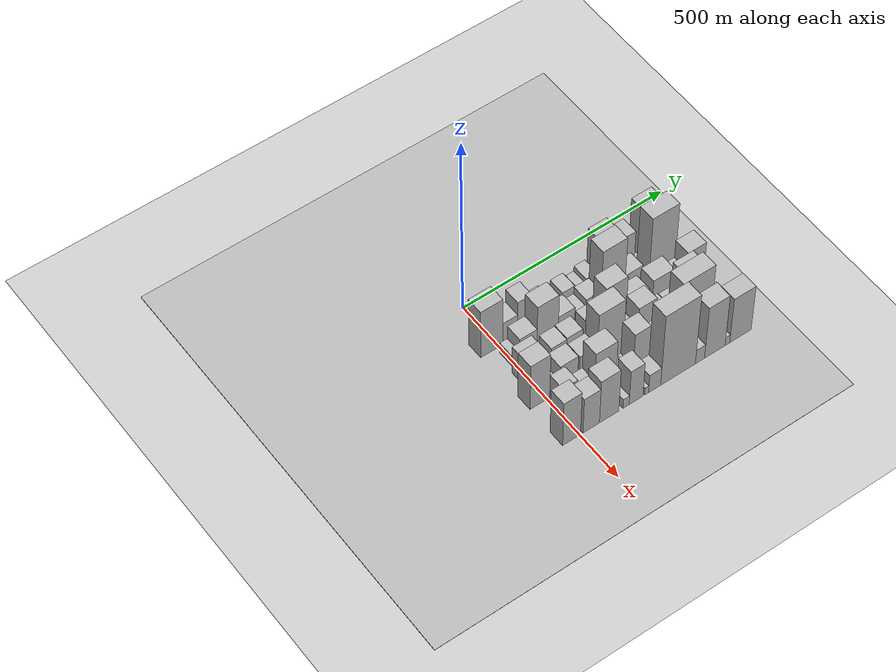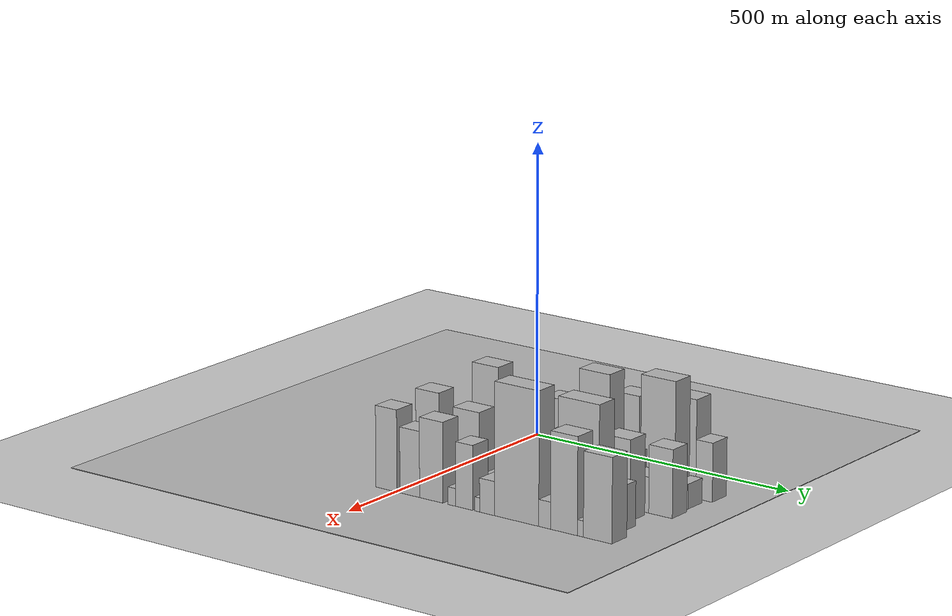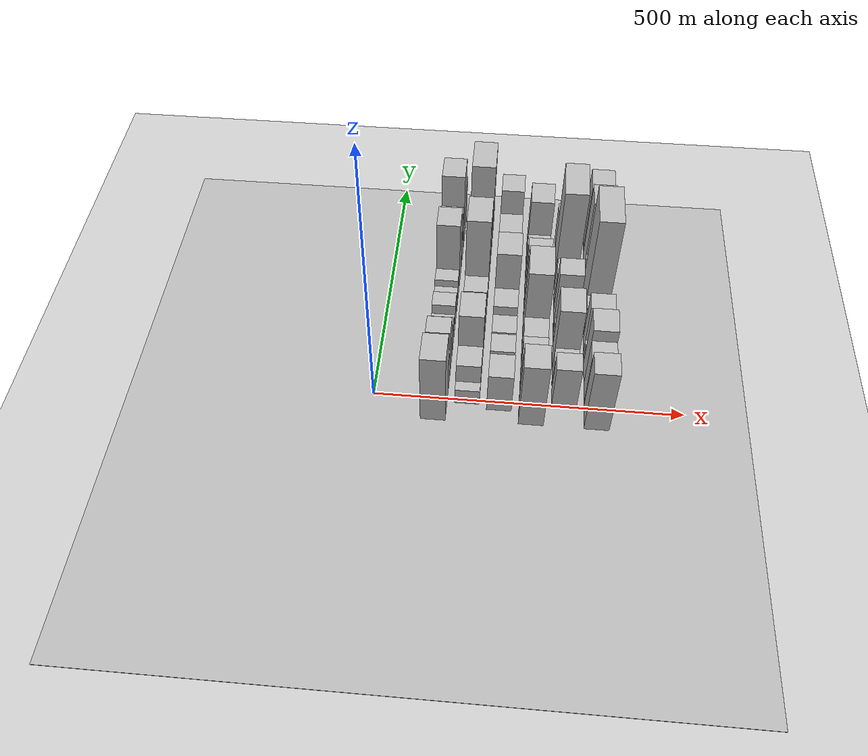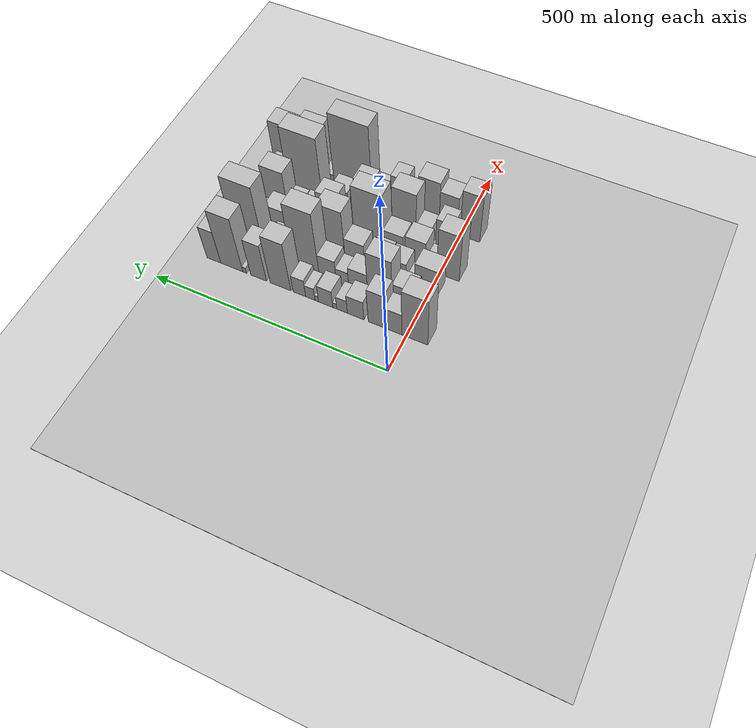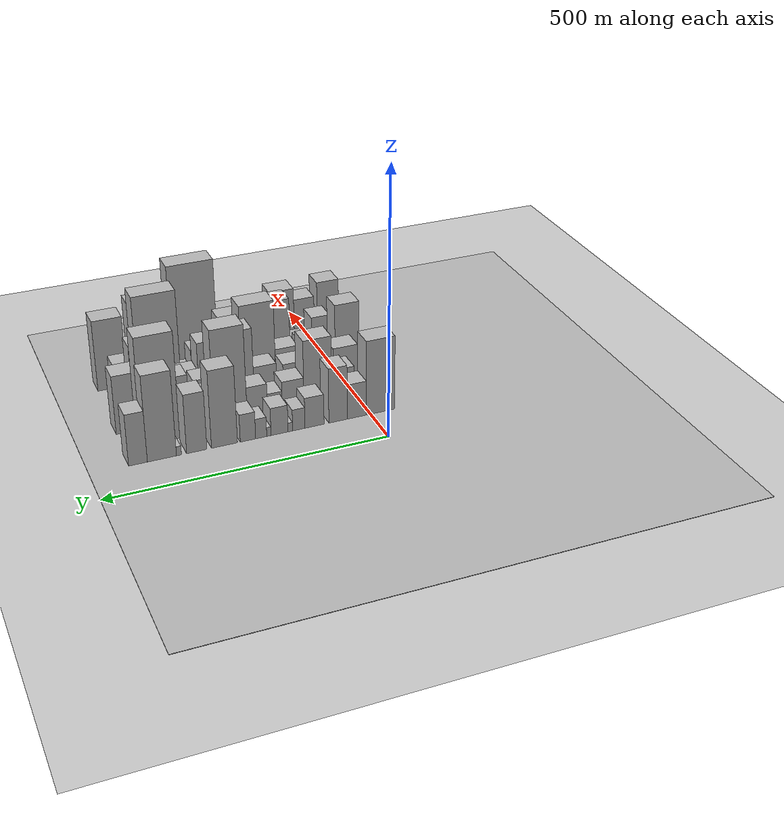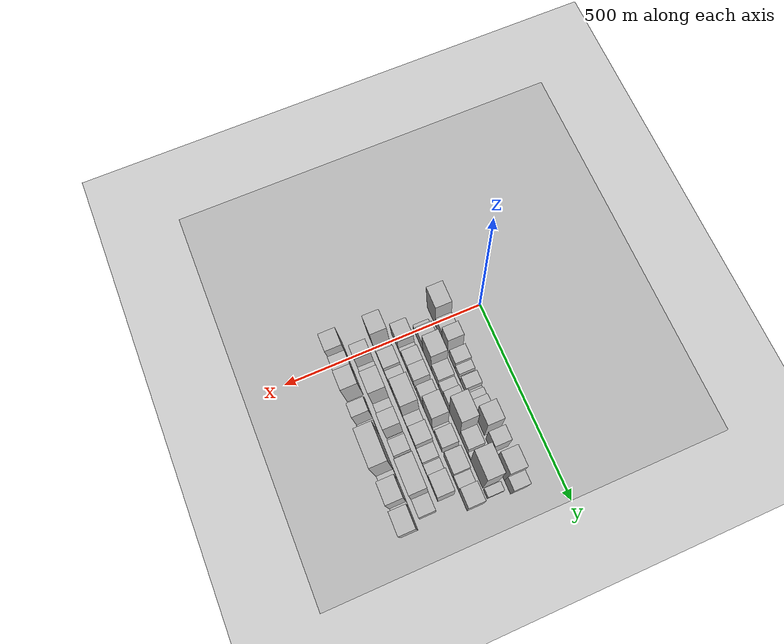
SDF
<sdf version="1.6">
 <world name="default">
  <include><name>ground_plane_1</name><uri>model://HANNAS_ground_plane</uri></include>
  <include>
   <name>ground_plane_2</name>
   <uri>model://HANNAS_ground_plane</uri>
   <pose>100 0 0  0 0 0</pose>
  </include>
  <model name="building_24">
   <static>1</static>
   <pose>100.0000 -18.0642 0 0.000000 0.000000 0.000000</pose>
   <link name="link">
    <pose>0 0 73.50 0 0 0</pose>
    <collision name="collision"><geometry><box><size>40.0000 53.4911 147.0000</size></box></geometry></collision>
    <visual name="visual">
     <cast_shadows>0</cast_shadows>
     <geometry><box><size>40.0000 53.4911 147.0000</size></box></geometry>
     <material>
      <script>
       <uri>model://HANNAS_wall/materials/scripts</uri>
       <uri>model://HANNAS_wall/materials/textures</uri>
       <name>vrc/HANNAS_wall</name>
      </script>
     </material>
    </visual>
   </link>
  </model>
  <model name="building_25">
   <static>1</static>
   <pose>100.0000 26.5422 0 0.000000 0.000000 0.000000</pose>
   <link name="link">
    <pose>0 0 34.50 0 0 0</pose>
    <collision name="collision"><geometry><box><size>40.0000 35.7216 69.0000</size></box></geometry></collision>
    <visual name="visual">
     <cast_shadows>0</cast_shadows>
     <geometry><box><size>40.0000 35.7216 69.0000</size></box></geometry>
     <material>
      <script>
       <uri>model://HANNAS_wall/materials/scripts</uri>
       <uri>model://HANNAS_wall/materials/textures</uri>
       <name>vrc/HANNAS_wall</name>
      </script>
     </material>
    </visual>
   </link>
  </model>
  <model name="building_26">
   <static>1</static>
   <pose>100.0000 61.6217 0 0.000000 0.000000 0.000000</pose>
   <link name="link">
    <pose>0 0 54.00 0 0 0</pose>
    <collision name="collision"><geometry><box><size>40.0000 34.4375 108.0000</size></box></geometry></collision>
    <visual name="visual">
     <cast_shadows>0</cast_shadows>
     <geometry><box><size>40.0000 34.4375 108.0000</size></box></geometry>
     <material>
      <script>
       <uri>model://HANNAS_wall/materials/scripts</uri>
       <uri>model://HANNAS_wall/materials/textures</uri>
       <name>vrc/HANNAS_wall</name>
      </script>
     </material>
    </visual>
   </link>
  </model>
  <model name="building_27">
   <static>1</static>
   <pose>100.0000 105.4177 0 0.000000 0.000000 0.000000</pose>
   <link name="link">
    <pose>0 0 30.00 0 0 0</pose>
    <collision name="collision"><geometry><box><size>40.0000 35.1545 60.0000</size></box></geometry></collision>
    <visual name="visual">
     <cast_shadows>0</cast_shadows>
     <geometry><box><size>40.0000 35.1545 60.0000</size></box></geometry>
     <material>
      <script>
       <uri>model://HANNAS_wall/materials/scripts</uri>
       <uri>model://HANNAS_wall/materials/textures</uri>
       <name>vrc/HANNAS_wall</name>
      </script>
     </material>
    </visual>
   </link>
  </model>
  <model name="building_28">
   <static>1</static>
   <pose>100.0000 134.3022 0 0.000000 0.000000 0.000000</pose>
   <link name="link">
    <pose>0 0 21.00 0 0 0</pose>
    <collision name="collision"><geometry><box><size>40.0000 22.6145 42.0000</size></box></geometry></collision>
    <visual name="visual">
     <cast_shadows>0</cast_shadows>
     <geometry><box><size>40.0000 22.6145 42.0000</size></box></geometry>
     <material>
      <script>
       <uri>model://HANNAS_wall/materials/scripts</uri>
       <uri>model://HANNAS_wall/materials/textures</uri>
       <name>vrc/HANNAS_wall</name>
      </script>
     </material>
    </visual>
   </link>
  </model>
  <model name="building_29">
   <static>1</static>
   <pose>100.0000 149.7486 0 0.000000 0.000000 0.000000</pose>
   <link name="link">
    <pose>0 0 9.00 0 0 0</pose>
    <collision name="collision"><geometry><box><size>40.0000 8.2783 18.0000</size></box></geometry></collision>
    <visual name="visual">
     <cast_shadows>0</cast_shadows>
     <geometry><box><size>40.0000 8.2783 18.0000</size></box></geometry>
     <material>
      <script>
       <uri>model://HANNAS_wall/materials/scripts</uri>
       <uri>model://HANNAS_wall/materials/textures</uri>
       <name>vrc/HANNAS_wall</name>
      </script>
     </material>
    </visual>
   </link>
  </model>
  <model name="building_30">
   <static>1</static>
   <pose>100.0000 169.3452 0 0.000000 0.000000 0.000000</pose>
   <link name="link">
    <pose>0 0 27.00 0 0 0</pose>
    <collision name="collision"><geometry><box><size>40.0000 30.9149 54.0000</size></box></geometry></collision>
    <visual name="visual">
     <cast_shadows>0</cast_shadows>
     <geometry><box><size>40.0000 30.9149 54.0000</size></box></geometry>
     <material>
      <script>
       <uri>model://HANNAS_wall/materials/scripts</uri>
       <uri>model://HANNAS_wall/materials/textures</uri>
       <name>vrc/HANNAS_wall</name>
      </script>
     </material>
    </visual>
   </link>
  </model>
  <model name="building_31">
   <static>1</static>
   <pose>100.0000 188.7054 0 0.000000 0.000000 0.000000</pose>
   <link name="link">
    <pose>0 0 9.00 0 0 0</pose>
    <collision name="collision"><geometry><box><size>40.0000 7.8055 18.0000</size></box></geometry></collision>
    <visual name="visual">
     <cast_shadows>0</cast_shadows>
     <geometry><box><size>40.0000 7.8055 18.0000</size></box></geometry>
     <material>
      <script>
       <uri>model://HANNAS_wall/materials/scripts</uri>
       <uri>model://HANNAS_wall/materials/textures</uri>
       <name>vrc/HANNAS_wall</name>
      </script>
     </material>
    </visual>
   </link>
  </model>
  <model name="building_32">
   <static>1</static>
   <pose>100.0000 202.5710 0 0.000000 0.000000 0.000000</pose>
   <link name="link">
    <pose>0 0 19.50 0 0 0</pose>
    <collision name="collision"><geometry><box><size>40.0000 19.9259 39.0000</size></box></geometry></collision>
    <visual name="visual">
     <cast_shadows>0</cast_shadows>
     <geometry><box><size>40.0000 19.9259 39.0000</size></box></geometry>
     <material>
      <script>
       <uri>model://HANNAS_wall/materials/scripts</uri>
       <uri>model://HANNAS_wall/materials/textures</uri>
       <name>vrc/HANNAS_wall</name>
      </script>
     </material>
    </visual>
   </link>
  </model>
  <model name="building_33">
   <static>1</static>
   <pose>100.0000 226.2784 0 0.000000 0.000000 0.000000</pose>
   <link name="link">
    <pose>0 0 27.00 0 0 0</pose>
    <collision name="collision"><geometry><box><size>40.0000 27.4888 54.0000</size></box></geometry></collision>
    <visual name="visual">
     <cast_shadows>0</cast_shadows>
     <geometry><box><size>40.0000 27.4888 54.0000</size></box></geometry>
     <material>
      <script>
       <uri>model://HANNAS_wall/materials/scripts</uri>
       <uri>model://HANNAS_wall/materials/textures</uri>
       <name>vrc/HANNAS_wall</name>
      </script>
     </material>
    </visual>
   </link>
  </model>
  <model name="building_34">
   <static>1</static>
   <pose>100.0000 267.9488 0 0.000000 0.000000 0.000000</pose>
   <link name="link">
    <pose>0 0 75.00 0 0 0</pose>
    <collision name="collision"><geometry><box><size>40.0000 45.8519 150.0000</size></box></geometry></collision>
    <visual name="visual">
     <cast_shadows>0</cast_shadows>
     <geometry><box><size>40.0000 45.8519 150.0000</size></box></geometry>
     <material>
      <script>
       <uri>model://HANNAS_wall/materials/scripts</uri>
       <uri>model://HANNAS_wall/materials/textures</uri>
       <name>vrc/HANNAS_wall</name>
      </script>
     </material>
    </visual>
   </link>
  </model>
  <model name="building_35">
   <static>1</static>
   <pose>100.0000 316.5658 0 0.000000 0.000000 0.000000</pose>
   <link name="link">
    <pose>0 0 57.00 0 0 0</pose>
    <collision name="collision"><geometry><box><size>40.0000 35.3823 114.0000</size></box></geometry></collision>
    <visual name="visual">
     <cast_shadows>0</cast_shadows>
     <geometry><box><size>40.0000 35.3823 114.0000</size></box></geometry>
     <material>
      <script>
       <uri>model://HANNAS_wall/materials/scripts</uri>
       <uri>model://HANNAS_wall/materials/textures</uri>
       <name>vrc/HANNAS_wall</name>
      </script>
     </material>
    </visual>
   </link>
  </model>
  <model name="building_36">
   <static>1</static>
   <pose>100.0000 347.5874 0 0.000000 0.000000 0.000000</pose>
   <link name="link">
    <pose>0 0 9.00 0 0 0</pose>
    <collision name="collision"><geometry><box><size>40.0000 8.6609 18.0000</size></box></geometry></collision>
    <visual name="visual">
     <cast_shadows>0</cast_shadows>
     <geometry><box><size>40.0000 8.6609 18.0000</size></box></geometry>
     <material>
      <script>
       <uri>model://HANNAS_wall/materials/scripts</uri>
       <uri>model://HANNAS_wall/materials/textures</uri>
       <name>vrc/HANNAS_wall</name>
      </script>
     </material>
    </visual>
   </link>
  </model>
  <model name="building_37">
   <static>1</static>
   <pose>100.0000 376.8296 0 0.000000 0.000000 0.000000</pose>
   <link name="link">
    <pose>0 0 82.50 0 0 0</pose>
    <collision name="collision"><geometry><box><size>40.0000 49.8235 165.0000</size></box></geometry></collision>
    <visual name="visual">
     <cast_shadows>0</cast_shadows>
     <geometry><box><size>40.0000 49.8235 165.0000</size></box></geometry>
     <material>
      <script>
       <uri>model://HANNAS_wall/materials/scripts</uri>
       <uri>model://HANNAS_wall/materials/textures</uri>
       <name>vrc/HANNAS_wall</name>
      </script>
     </material>
    </visual>
   </link>
  </model>
  <model name="building_38">
   <static>1</static>
   <pose>100.0000 417.7137 0 0.000000 0.000000 0.000000</pose>
   <link name="link">
    <pose>0 0 49.50 0 0 0</pose>
    <collision name="collision"><geometry><box><size>40.0000 31.9446 99.0000</size></box></geometry></collision>
    <visual name="visual">
     <cast_shadows>0</cast_shadows>
     <geometry><box><size>40.0000 31.9446 99.0000</size></box></geometry>
     <material>
      <script>
       <uri>model://HANNAS_wall/materials/scripts</uri>
       <uri>model://HANNAS_wall/materials/textures</uri>
       <name>vrc/HANNAS_wall</name>
      </script>
     </material>
    </visual>
   </link>
  </model>
  <model name="building_73">
   <static>1</static>
   <pose>152.0000 1.3417 0 0.000000 0.000000 0.000000</pose>
   <link name="link">
    <pose>0 0 16.50 0 0 0</pose>
    <collision name="collision"><geometry><box><size>40.0000 18.4287 33.0000</size></box></geometry></collision>
    <visual name="visual">
     <cast_shadows>0</cast_shadows>
     <geometry><box><size>40.0000 18.4287 33.0000</size></box></geometry>
     <material>
      <script>
       <uri>model://HANNAS_wall/materials/scripts</uri>
       <uri>model://HANNAS_wall/materials/textures</uri>
       <name>vrc/HANNAS_wall</name>
      </script>
     </material>
    </visual>
   </link>
  </model>
  <model name="building_74">
   <static>1</static>
   <pose>152.0000 31.7749 0 0.000000 0.000000 0.000000</pose>
   <link name="link">
    <pose>0 0 36.00 0 0 0</pose>
    <collision name="collision"><geometry><box><size>40.0000 42.4376 72.0000</size></box></geometry></collision>
    <visual name="visual">
     <cast_shadows>0</cast_shadows>
     <geometry><box><size>40.0000 42.4376 72.0000</size></box></geometry>
     <material>
      <script>
       <uri>model://HANNAS_wall/materials/scripts</uri>
       <uri>model://HANNAS_wall/materials/textures</uri>
       <name>vrc/HANNAS_wall</name>
      </script>
     </material>
    </visual>
   </link>
  </model>
  <model name="building_75">
   <static>1</static>
   <pose>152.0000 79.0639 0 0.000000 0.000000 0.000000</pose>
   <link name="link">
    <pose>0 0 70.50 0 0 0</pose>
    <collision name="collision"><geometry><box><size>40.0000 52.1404 141.0000</size></box></geometry></collision>
    <visual name="visual">
     <cast_shadows>0</cast_shadows>
     <geometry><box><size>40.0000 52.1404 141.0000</size></box></geometry>
     <material>
      <script>
       <uri>model://HANNAS_wall/materials/scripts</uri>
       <uri>model://HANNAS_wall/materials/textures</uri>
       <name>vrc/HANNAS_wall</name>
      </script>
     </material>
    </visual>
   </link>
  </model>
  <model name="building_76">
   <static>1</static>
   <pose>152.0000 125.3263 0 0.000000 0.000000 0.000000</pose>
   <link name="link">
    <pose>0 0 34.50 0 0 0</pose>
    <collision name="collision"><geometry><box><size>40.0000 40.3844 69.0000</size></box></geometry></collision>
    <visual name="visual">
     <cast_shadows>0</cast_shadows>
     <geometry><box><size>40.0000 40.3844 69.0000</size></box></geometry>
     <material>
      <script>
       <uri>model://HANNAS_wall/materials/scripts</uri>
       <uri>model://HANNAS_wall/materials/textures</uri>
       <name>vrc/HANNAS_wall</name>
      </script>
     </material>
    </visual>
   </link>
  </model>
  <model name="building_77">
   <static>1</static>
   <pose>152.0000 159.1133 0 0.000000 0.000000 0.000000</pose>
   <link name="link">
    <pose>0 0 25.50 0 0 0</pose>
    <collision name="collision"><geometry><box><size>40.0000 27.1896 51.0000</size></box></geometry></collision>
    <visual name="visual">
     <cast_shadows>0</cast_shadows>
     <geometry><box><size>40.0000 27.1896 51.0000</size></box></geometry>
     <material>
      <script>
       <uri>model://HANNAS_wall/materials/scripts</uri>
       <uri>model://HANNAS_wall/materials/textures</uri>
       <name>vrc/HANNAS_wall</name>
      </script>
     </material>
    </visual>
   </link>
  </model>
  <model name="building_78">
   <static>1</static>
   <pose>152.0000 191.3102 0 0.000000 0.000000 0.000000</pose>
   <link name="link">
    <pose>0 0 36.00 0 0 0</pose>
    <collision name="collision"><geometry><box><size>40.0000 37.2042 72.0000</size></box></geometry></collision>
    <visual name="visual">
     <cast_shadows>0</cast_shadows>
     <geometry><box><size>40.0000 37.2042 72.0000</size></box></geometry>
     <material>
      <script>
       <uri>model://HANNAS_wall/materials/scripts</uri>
       <uri>model://HANNAS_wall/materials/textures</uri>
       <name>vrc/HANNAS_wall</name>
      </script>
     </material>
    </visual>
   </link>
  </model>
  <model name="building_79">
   <static>1</static>
   <pose>152.0000 239.7228 0 0.000000 0.000000 0.000000</pose>
   <link name="link">
    <pose>0 0 97.50 0 0 0</pose>
    <collision name="collision"><geometry><box><size>40.0000 59.6211 195.0000</size></box></geometry></collision>
    <visual name="visual">
     <cast_shadows>0</cast_shadows>
     <geometry><box><size>40.0000 59.6211 195.0000</size></box></geometry>
     <material>
      <script>
       <uri>model://HANNAS_wall/materials/scripts</uri>
       <uri>model://HANNAS_wall/materials/textures</uri>
       <name>vrc/HANNAS_wall</name>
      </script>
     </material>
    </visual>
   </link>
  </model>
  <model name="building_80">
   <static>1</static>
   <pose>152.0000 291.7577 0 0.000000 0.000000 0.000000</pose>
   <link name="link">
    <pose>0 0 37.50 0 0 0</pose>
    <collision name="collision"><geometry><box><size>40.0000 44.4486 75.0000</size></box></geometry></collision>
    <visual name="visual">
     <cast_shadows>0</cast_shadows>
     <geometry><box><size>40.0000 44.4486 75.0000</size></box></geometry>
     <material>
      <script>
       <uri>model://HANNAS_wall/materials/scripts</uri>
       <uri>model://HANNAS_wall/materials/textures</uri>
       <name>vrc/HANNAS_wall</name>
      </script>
     </material>
    </visual>
   </link>
  </model>
  <model name="building_81">
   <static>1</static>
   <pose>152.0000 322.3660 0 0.000000 0.000000 0.000000</pose>
   <link name="link">
    <pose>0 0 15.00 0 0 0</pose>
    <collision name="collision"><geometry><box><size>40.0000 16.7682 30.0000</size></box></geometry></collision>
    <visual name="visual">
     <cast_shadows>0</cast_shadows>
     <geometry><box><size>40.0000 16.7682 30.0000</size></box></geometry>
     <material>
      <script>
       <uri>model://HANNAS_wall/materials/scripts</uri>
       <uri>model://HANNAS_wall/materials/textures</uri>
       <name>vrc/HANNAS_wall</name>
      </script>
     </material>
    </visual>
   </link>
  </model>
  <model name="building_82">
   <static>1</static>
   <pose>152.0000 363.9623 0 0.000000 0.000000 0.000000</pose>
   <link name="link">
    <pose>0 0 103.50 0 0 0</pose>
    <collision name="collision"><geometry><box><size>40.0000 66.4243 207.0000</size></box></geometry></collision>
    <visual name="visual">
     <cast_shadows>0</cast_shadows>
     <geometry><box><size>40.0000 66.4243 207.0000</size></box></geometry>
     <material>
      <script>
       <uri>model://HANNAS_wall/materials/scripts</uri>
       <uri>model://HANNAS_wall/materials/textures</uri>
       <name>vrc/HANNAS_wall</name>
      </script>
     </material>
    </visual>
   </link>
  </model>
  <model name="building_83">
   <static>1</static>
   <pose>152.0000 411.2300 0 0.000000 0.000000 0.000000</pose>
   <link name="link">
    <pose>0 0 21.00 0 0 0</pose>
    <collision name="collision"><geometry><box><size>40.0000 22.1111 42.0000</size></box></geometry></collision>
    <visual name="visual">
     <cast_shadows>0</cast_shadows>
     <geometry><box><size>40.0000 22.1111 42.0000</size></box></geometry>
     <material>
      <script>
       <uri>model://HANNAS_wall/materials/scripts</uri>
       <uri>model://HANNAS_wall/materials/textures</uri>
       <name>vrc/HANNAS_wall</name>
      </script>
     </material>
    </visual>
   </link>
  </model>
  <model name="building_120">
   <static>1</static>
   <pose>204.0000 6.5252 0 0.000000 0.000000 0.000000</pose>
   <link name="link">
    <pose>0 0 42.00 0 0 0</pose>
    <collision name="collision"><geometry><box><size>40.0000 47.1550 84.0000</size></box></geometry></collision>
    <visual name="visual">
     <cast_shadows>0</cast_shadows>
     <geometry><box><size>40.0000 47.1550 84.0000</size></box></geometry>
     <material>
      <script>
       <uri>model://HANNAS_wall/materials/scripts</uri>
       <uri>model://HANNAS_wall/materials/textures</uri>
       <name>vrc/HANNAS_wall</name>
      </script>
     </material>
    </visual>
   </link>
  </model>
  <model name="building_121">
   <static>1</static>
   <pose>204.0000 39.0673 0 0.000000 0.000000 0.000000</pose>
   <link name="link">
    <pose>0 0 15.00 0 0 0</pose>
    <collision name="collision"><geometry><box><size>40.0000 17.9292 30.0000</size></box></geometry></collision>
    <visual name="visual">
     <cast_shadows>0</cast_shadows>
     <geometry><box><size>40.0000 17.9292 30.0000</size></box></geometry>
     <material>
      <script>
       <uri>model://HANNAS_wall/materials/scripts</uri>
       <uri>model://HANNAS_wall/materials/textures</uri>
       <name>vrc/HANNAS_wall</name>
      </script>
     </material>
    </visual>
   </link>
  </model>
  <model name="building_122">
   <static>1</static>
   <pose>204.0000 66.9914 0 0.000000 0.000000 0.000000</pose>
   <link name="link">
    <pose>0 0 34.50 0 0 0</pose>
    <collision name="collision"><geometry><box><size>40.0000 37.9190 69.0000</size></box></geometry></collision>
    <visual name="visual">
     <cast_shadows>0</cast_shadows>
     <geometry><box><size>40.0000 37.9190 69.0000</size></box></geometry>
     <material>
      <script>
       <uri>model://HANNAS_wall/materials/scripts</uri>
       <uri>model://HANNAS_wall/materials/textures</uri>
       <name>vrc/HANNAS_wall</name>
      </script>
     </material>
    </visual>
   </link>
  </model>
  <model name="building_123">
   <static>1</static>
   <pose>204.0000 105.3853 0 0.000000 0.000000 0.000000</pose>
   <link name="link">
    <pose>0 0 36.00 0 0 0</pose>
    <collision name="collision"><geometry><box><size>40.0000 38.8689 72.0000</size></box></geometry></collision>
    <visual name="visual">
     <cast_shadows>0</cast_shadows>
     <geometry><box><size>40.0000 38.8689 72.0000</size></box></geometry>
     <material>
      <script>
       <uri>model://HANNAS_wall/materials/scripts</uri>
       <uri>model://HANNAS_wall/materials/textures</uri>
       <name>vrc/HANNAS_wall</name>
      </script>
     </material>
    </visual>
   </link>
  </model>
  <model name="building_124">
   <static>1</static>
   <pose>204.0000 128.4261 0 0.000000 0.000000 0.000000</pose>
   <link name="link">
    <pose>0 0 7.50 0 0 0</pose>
    <collision name="collision"><geometry><box><size>40.0000 7.2129 15.0000</size></box></geometry></collision>
    <visual name="visual">
     <cast_shadows>0</cast_shadows>
     <geometry><box><size>40.0000 7.2129 15.0000</size></box></geometry>
     <material>
      <script>
       <uri>model://HANNAS_wall/materials/scripts</uri>
       <uri>model://HANNAS_wall/materials/textures</uri>
       <name>vrc/HANNAS_wall</name>
      </script>
     </material>
    </visual>
   </link>
  </model>
  <model name="building_125">
   <static>1</static>
   <pose>204.0000 158.1881 0 0.000000 0.000000 0.000000</pose>
   <link name="link">
    <pose>0 0 39.00 0 0 0</pose>
    <collision name="collision"><geometry><box><size>40.0000 42.3111 78.0000</size></box></geometry></collision>
    <visual name="visual">
     <cast_shadows>0</cast_shadows>
     <geometry><box><size>40.0000 42.3111 78.0000</size></box></geometry>
     <material>
      <script>
       <uri>model://HANNAS_wall/materials/scripts</uri>
       <uri>model://HANNAS_wall/materials/textures</uri>
       <name>vrc/HANNAS_wall</name>
      </script>
     </material>
    </visual>
   </link>
  </model>
  <model name="building_126">
   <static>1</static>
   <pose>204.0000 205.6470 0 0.000000 0.000000 0.000000</pose>
   <link name="link">
    <pose>0 0 78.00 0 0 0</pose>
    <collision name="collision"><geometry><box><size>40.0000 52.6066 156.0000</size></box></geometry></collision>
    <visual name="visual">
     <cast_shadows>0</cast_shadows>
     <geometry><box><size>40.0000 52.6066 156.0000</size></box></geometry>
     <material>
      <script>
       <uri>model://HANNAS_wall/materials/scripts</uri>
       <uri>model://HANNAS_wall/materials/textures</uri>
       <name>vrc/HANNAS_wall</name>
      </script>
     </material>
    </visual>
   </link>
  </model>
  <model name="building_127">
   <static>1</static>
   <pose>204.0000 238.0465 0 0.000000 0.000000 0.000000</pose>
   <link name="link">
    <pose>0 0 13.50 0 0 0</pose>
    <collision name="collision"><geometry><box><size>40.0000 12.1924 27.0000</size></box></geometry></collision>
    <visual name="visual">
     <cast_shadows>0</cast_shadows>
     <geometry><box><size>40.0000 12.1924 27.0000</size></box></geometry>
     <material>
      <script>
       <uri>model://HANNAS_wall/materials/scripts</uri>
       <uri>model://HANNAS_wall/materials/textures</uri>
       <name>vrc/HANNAS_wall</name>
      </script>
     </material>
    </visual>
   </link>
  </model>
  <model name="building_128">
   <static>1</static>
   <pose>204.0000 266.2057 0 0.000000 0.000000 0.000000</pose>
   <link name="link">
    <pose>0 0 37.50 0 0 0</pose>
    <collision name="collision"><geometry><box><size>40.0000 44.1260 75.0000</size></box></geometry></collision>
    <visual name="visual">
     <cast_shadows>0</cast_shadows>
     <geometry><box><size>40.0000 44.1260 75.0000</size></box></geometry>
     <material>
      <script>
       <uri>model://HANNAS_wall/materials/scripts</uri>
       <uri>model://HANNAS_wall/materials/textures</uri>
       <name>vrc/HANNAS_wall</name>
      </script>
     </material>
    </visual>
   </link>
  </model>
  <model name="building_129">
   <static>1</static>
   <pose>204.0000 324.5294 0 0.000000 0.000000 0.000000</pose>
   <link name="link">
    <pose>0 0 45.00 0 0 0</pose>
    <collision name="collision"><geometry><box><size>40.0000 52.5213 90.0000</size></box></geometry></collision>
    <visual name="visual">
     <cast_shadows>0</cast_shadows>
     <geometry><box><size>40.0000 52.5213 90.0000</size></box></geometry>
     <material>
      <script>
       <uri>model://HANNAS_wall/materials/scripts</uri>
       <uri>model://HANNAS_wall/materials/textures</uri>
       <name>vrc/HANNAS_wall</name>
      </script>
     </material>
    </visual>
   </link>
  </model>
  <model name="building_130">
   <static>1</static>
   <pose>204.0000 367.0943 0 0.000000 0.000000 0.000000</pose>
   <link name="link">
    <pose>0 0 30.00 0 0 0</pose>
    <collision name="collision"><geometry><box><size>40.0000 32.6086 60.0000</size></box></geometry></collision>
    <visual name="visual">
     <cast_shadows>0</cast_shadows>
     <geometry><box><size>40.0000 32.6086 60.0000</size></box></geometry>
     <material>
      <script>
       <uri>model://HANNAS_wall/materials/scripts</uri>
       <uri>model://HANNAS_wall/materials/textures</uri>
       <name>vrc/HANNAS_wall</name>
      </script>
     </material>
    </visual>
   </link>
  </model>
  <model name="building_131">
   <static>1</static>
   <pose>204.0000 406.0487 0 0.000000 0.000000 0.000000</pose>
   <link name="link">
    <pose>0 0 57.00 0 0 0</pose>
    <collision name="collision"><geometry><box><size>40.0000 45.3002 114.0000</size></box></geometry></collision>
    <visual name="visual">
     <cast_shadows>0</cast_shadows>
     <geometry><box><size>40.0000 45.3002 114.0000</size></box></geometry>
     <material>
      <script>
       <uri>model://HANNAS_wall/materials/scripts</uri>
       <uri>model://HANNAS_wall/materials/textures</uri>
       <name>vrc/HANNAS_wall</name>
      </script>
     </material>
    </visual>
   </link>
  </model>
  <model name="building_168">
   <static>1</static>
   <pose>256.0000 -17.6730 0 0.000000 0.000000 0.000000</pose>
   <link name="link">
    <pose>0 0 70.50 0 0 0</pose>
    <collision name="collision"><geometry><box><size>40.0000 47.3767 141.0000</size></box></geometry></collision>
    <visual name="visual">
     <cast_shadows>0</cast_shadows>
     <geometry><box><size>40.0000 47.3767 141.0000</size></box></geometry>
     <material>
      <script>
       <uri>model://HANNAS_wall/materials/scripts</uri>
       <uri>model://HANNAS_wall/materials/textures</uri>
       <name>vrc/HANNAS_wall</name>
      </script>
     </material>
    </visual>
   </link>
  </model>
  <model name="building_169">
   <static>1</static>
   <pose>256.0000 19.7069 0 0.000000 0.000000 0.000000</pose>
   <link name="link">
    <pose>0 0 18.00 0 0 0</pose>
    <collision name="collision"><geometry><box><size>40.0000 21.3831 36.0000</size></box></geometry></collision>
    <visual name="visual">
     <cast_shadows>0</cast_shadows>
     <geometry><box><size>40.0000 21.3831 36.0000</size></box></geometry>
     <material>
      <script>
       <uri>model://HANNAS_wall/materials/scripts</uri>
       <uri>model://HANNAS_wall/materials/textures</uri>
       <name>vrc/HANNAS_wall</name>
      </script>
     </material>
    </visual>
   </link>
  </model>
  <model name="building_170">
   <static>1</static>
   <pose>256.0000 52.1544 0 0.000000 0.000000 0.000000</pose>
   <link name="link">
    <pose>0 0 40.50 0 0 0</pose>
    <collision name="collision"><geometry><box><size>40.0000 43.5119 81.0000</size></box></geometry></collision>
    <visual name="visual">
     <cast_shadows>0</cast_shadows>
     <geometry><box><size>40.0000 43.5119 81.0000</size></box></geometry>
     <material>
      <script>
       <uri>model://HANNAS_wall/materials/scripts</uri>
       <uri>model://HANNAS_wall/materials/textures</uri>
       <name>vrc/HANNAS_wall</name>
      </script>
     </material>
    </visual>
   </link>
  </model>
  <model name="building_171">
   <static>1</static>
   <pose>256.0000 99.5088 0 0.000000 0.000000 0.000000</pose>
   <link name="link">
    <pose>0 0 37.50 0 0 0</pose>
    <collision name="collision"><geometry><box><size>40.0000 43.1968 75.0000</size></box></geometry></collision>
    <visual name="visual">
     <cast_shadows>0</cast_shadows>
     <geometry><box><size>40.0000 43.1968 75.0000</size></box></geometry>
     <material>
      <script>
       <uri>model://HANNAS_wall/materials/scripts</uri>
       <uri>model://HANNAS_wall/materials/textures</uri>
       <name>vrc/HANNAS_wall</name>
      </script>
     </material>
    </visual>
   </link>
  </model>
  <model name="building_172">
   <static>1</static>
   <pose>256.0000 153.2474 0 0.000000 0.000000 0.000000</pose>
   <link name="link">
    <pose>0 0 87.00 0 0 0</pose>
    <collision name="collision"><geometry><box><size>40.0000 64.2805 174.0000</size></box></geometry></collision>
    <visual name="visual">
     <cast_shadows>0</cast_shadows>
     <geometry><box><size>40.0000 64.2805 174.0000</size></box></geometry>
     <material>
      <script>
       <uri>model://HANNAS_wall/materials/scripts</uri>
       <uri>model://HANNAS_wall/materials/textures</uri>
       <name>vrc/HANNAS_wall</name>
      </script>
     </material>
    </visual>
   </link>
  </model>
  <model name="building_173">
   <static>1</static>
   <pose>256.0000 202.9272 0 0.000000 0.000000 0.000000</pose>
   <link name="link">
    <pose>0 0 30.00 0 0 0</pose>
    <collision name="collision"><geometry><box><size>40.0000 35.0792 60.0000</size></box></geometry></collision>
    <visual name="visual">
     <cast_shadows>0</cast_shadows>
     <geometry><box><size>40.0000 35.0792 60.0000</size></box></geometry>
     <material>
      <script>
       <uri>model://HANNAS_wall/materials/scripts</uri>
       <uri>model://HANNAS_wall/materials/textures</uri>
       <name>vrc/HANNAS_wall</name>
      </script>
     </material>
    </visual>
   </link>
  </model>
  <model name="building_174">
   <static>1</static>
   <pose>256.0000 242.4556 0 0.000000 0.000000 0.000000</pose>
   <link name="link">
    <pose>0 0 58.50 0 0 0</pose>
    <collision name="collision"><geometry><box><size>40.0000 43.9775 117.0000</size></box></geometry></collision>
    <visual name="visual">
     <cast_shadows>0</cast_shadows>
     <geometry><box><size>40.0000 43.9775 117.0000</size></box></geometry>
     <material>
      <script>
       <uri>model://HANNAS_wall/materials/scripts</uri>
       <uri>model://HANNAS_wall/materials/textures</uri>
       <name>vrc/HANNAS_wall</name>
      </script>
     </material>
    </visual>
   </link>
  </model>
  <model name="building_175">
   <static>1</static>
   <pose>256.0000 281.7244 0 0.000000 0.000000 0.000000</pose>
   <link name="link">
    <pose>0 0 31.50 0 0 0</pose>
    <collision name="collision"><geometry><box><size>40.0000 34.5602 63.0000</size></box></geometry></collision>
    <visual name="visual">
     <cast_shadows>0</cast_shadows>
     <geometry><box><size>40.0000 34.5602 63.0000</size></box></geometry>
     <material>
      <script>
       <uri>model://HANNAS_wall/materials/scripts</uri>
       <uri>model://HANNAS_wall/materials/textures</uri>
       <name>vrc/HANNAS_wall</name>
      </script>
     </material>
    </visual>
   </link>
  </model>
  <model name="building_176">
   <static>1</static>
   <pose>256.0000 317.9074 0 0.000000 0.000000 0.000000</pose>
   <link name="link">
    <pose>0 0 30.00 0 0 0</pose>
    <collision name="collision"><geometry><box><size>40.0000 31.8058 60.0000</size></box></geometry></collision>
    <visual name="visual">
     <cast_shadows>0</cast_shadows>
     <geometry><box><size>40.0000 31.8058 60.0000</size></box></geometry>
     <material>
      <script>
       <uri>model://HANNAS_wall/materials/scripts</uri>
       <uri>model://HANNAS_wall/materials/textures</uri>
       <name>vrc/HANNAS_wall</name>
      </script>
     </material>
    </visual>
   </link>
  </model>
  <model name="building_177">
   <static>1</static>
   <pose>256.0000 359.0659 0 0.000000 0.000000 0.000000</pose>
   <link name="link">
    <pose>0 0 67.50 0 0 0</pose>
    <collision name="collision"><geometry><box><size>40.0000 50.5113 135.0000</size></box></geometry></collision>
    <visual name="visual">
     <cast_shadows>0</cast_shadows>
     <geometry><box><size>40.0000 50.5113 135.0000</size></box></geometry>
     <material>
      <script>
       <uri>model://HANNAS_wall/materials/scripts</uri>
       <uri>model://HANNAS_wall/materials/textures</uri>
       <name>vrc/HANNAS_wall</name>
      </script>
     </material>
    </visual>
   </link>
  </model>
  <model name="building_213">
   <static>1</static>
   <pose>308.0000 14.2326 0 0.000000 0.000000 0.000000</pose>
   <link name="link">
    <pose>0 0 48.00 0 0 0</pose>
    <collision name="collision"><geometry><box><size>40.0000 35.5693 96.0000</size></box></geometry></collision>
    <visual name="visual">
     <cast_shadows>0</cast_shadows>
     <geometry><box><size>40.0000 35.5693 96.0000</size></box></geometry>
     <material>
      <script>
       <uri>model://HANNAS_wall/materials/scripts</uri>
       <uri>model://HANNAS_wall/materials/textures</uri>
       <name>vrc/HANNAS_wall</name>
      </script>
     </material>
    </visual>
   </link>
  </model>
  <model name="building_214">
   <static>1</static>
   <pose>308.0000 58.1979 0 0.000000 0.000000 0.000000</pose>
   <link name="link">
    <pose>0 0 28.50 0 0 0</pose>
    <collision name="collision"><geometry><box><size>40.0000 32.3612 57.0000</size></box></geometry></collision>
    <visual name="visual">
     <cast_shadows>0</cast_shadows>
     <geometry><box><size>40.0000 32.3612 57.0000</size></box></geometry>
     <material>
      <script>
       <uri>model://HANNAS_wall/materials/scripts</uri>
       <uri>model://HANNAS_wall/materials/textures</uri>
       <name>vrc/HANNAS_wall</name>
      </script>
     </material>
    </visual>
   </link>
  </model>
  <model name="building_215">
   <static>1</static>
   <pose>308.0000 100.6138 0 0.000000 0.000000 0.000000</pose>
   <link name="link">
    <pose>0 0 72.00 0 0 0</pose>
    <collision name="collision"><geometry><box><size>40.0000 52.4707 144.0000</size></box></geometry></collision>
    <visual name="visual">
     <cast_shadows>0</cast_shadows>
     <geometry><box><size>40.0000 52.4707 144.0000</size></box></geometry>
     <material>
      <script>
       <uri>model://HANNAS_wall/materials/scripts</uri>
       <uri>model://HANNAS_wall/materials/textures</uri>
       <name>vrc/HANNAS_wall</name>
      </script>
     </material>
    </visual>
   </link>
  </model>
  <model name="building_216">
   <static>1</static>
   <pose>308.0000 142.4859 0 0.000000 0.000000 0.000000</pose>
   <link name="link">
    <pose>0 0 21.00 0 0 0</pose>
    <collision name="collision"><geometry><box><size>40.0000 23.2734 42.0000</size></box></geometry></collision>
    <visual name="visual">
     <cast_shadows>0</cast_shadows>
     <geometry><box><size>40.0000 23.2734 42.0000</size></box></geometry>
     <material>
      <script>
       <uri>model://HANNAS_wall/materials/scripts</uri>
       <uri>model://HANNAS_wall/materials/textures</uri>
       <name>vrc/HANNAS_wall</name>
      </script>
     </material>
    </visual>
   </link>
  </model>
  <model name="building_217">
   <static>1</static>
   <pose>308.0000 163.7034 0 0.000000 0.000000 0.000000</pose>
   <link name="link">
    <pose>0 0 13.50 0 0 0</pose>
    <collision name="collision"><geometry><box><size>40.0000 11.1617 27.0000</size></box></geometry></collision>
    <visual name="visual">
     <cast_shadows>0</cast_shadows>
     <geometry><box><size>40.0000 11.1617 27.0000</size></box></geometry>
     <material>
      <script>
       <uri>model://HANNAS_wall/materials/scripts</uri>
       <uri>model://HANNAS_wall/materials/textures</uri>
       <name>vrc/HANNAS_wall</name>
      </script>
     </material>
    </visual>
   </link>
  </model>
  <model name="building_218">
   <static>1</static>
   <pose>308.0000 188.7643 0 0.000000 0.000000 0.000000</pose>
   <link name="link">
    <pose>0 0 64.50 0 0 0</pose>
    <collision name="collision"><geometry><box><size>40.0000 38.9601 129.0000</size></box></geometry></collision>
    <visual name="visual">
     <cast_shadows>0</cast_shadows>
     <geometry><box><size>40.0000 38.9601 129.0000</size></box></geometry>
     <material>
      <script>
       <uri>model://HANNAS_wall/materials/scripts</uri>
       <uri>model://HANNAS_wall/materials/textures</uri>
       <name>vrc/HANNAS_wall</name>
      </script>
     </material>
    </visual>
   </link>
  </model>
  <model name="building_219">
   <static>1</static>
   <pose>308.0000 218.5915 0 0.000000 0.000000 0.000000</pose>
   <link name="link">
    <pose>0 0 12.00 0 0 0</pose>
    <collision name="collision"><geometry><box><size>40.0000 10.6941 24.0000</size></box></geometry></collision>
    <visual name="visual">
     <cast_shadows>0</cast_shadows>
     <geometry><box><size>40.0000 10.6941 24.0000</size></box></geometry>
     <material>
      <script>
       <uri>model://HANNAS_wall/materials/scripts</uri>
       <uri>model://HANNAS_wall/materials/textures</uri>
       <name>vrc/HANNAS_wall</name>
      </script>
     </material>
    </visual>
   </link>
  </model>
  <model name="building_220">
   <static>1</static>
   <pose>308.0000 242.9731 0 0.000000 0.000000 0.000000</pose>
   <link name="link">
    <pose>0 0 37.50 0 0 0</pose>
    <collision name="collision"><geometry><box><size>40.0000 38.0691 75.0000</size></box></geometry></collision>
    <visual name="visual">
     <cast_shadows>0</cast_shadows>
     <geometry><box><size>40.0000 38.0691 75.0000</size></box></geometry>
     <material>
      <script>
       <uri>model://HANNAS_wall/materials/scripts</uri>
       <uri>model://HANNAS_wall/materials/textures</uri>
       <name>vrc/HANNAS_wall</name>
      </script>
     </material>
    </visual>
   </link>
  </model>
  <model name="building_221">
   <static>1</static>
   <pose>308.0000 272.3693 0 0.000000 0.000000 0.000000</pose>
   <link name="link">
    <pose>0 0 19.50 0 0 0</pose>
    <collision name="collision"><geometry><box><size>40.0000 20.7233 39.0000</size></box></geometry></collision>
    <visual name="visual">
     <cast_shadows>0</cast_shadows>
     <geometry><box><size>40.0000 20.7233 39.0000</size></box></geometry>
     <material>
      <script>
       <uri>model://HANNAS_wall/materials/scripts</uri>
       <uri>model://HANNAS_wall/materials/textures</uri>
       <name>vrc/HANNAS_wall</name>
      </script>
     </material>
    </visual>
   </link>
  </model>
  <model name="building_222">
   <static>1</static>
   <pose>308.0000 322.0709 0 0.000000 0.000000 0.000000</pose>
   <link name="link">
    <pose>0 0 100.50 0 0 0</pose>
    <collision name="collision"><geometry><box><size>40.0000 78.6800 201.0000</size></box></geometry></collision>
    <visual name="visual">
     <cast_shadows>0</cast_shadows>
     <geometry><box><size>40.0000 78.6800 201.0000</size></box></geometry>
     <material>
      <script>
       <uri>model://HANNAS_wall/materials/scripts</uri>
       <uri>model://HANNAS_wall/materials/textures</uri>
       <name>vrc/HANNAS_wall</name>
      </script>
     </material>
    </visual>
   </link>
  </model>
  <model name="building_223">
   <static>1</static>
   <pose>308.0000 382.3661 0 0.000000 0.000000 0.000000</pose>
   <link name="link">
    <pose>0 0 37.50 0 0 0</pose>
    <collision name="collision"><geometry><box><size>40.0000 41.9105 75.0000</size></box></geometry></collision>
    <visual name="visual">
     <cast_shadows>0</cast_shadows>
     <geometry><box><size>40.0000 41.9105 75.0000</size></box></geometry>
     <material>
      <script>
       <uri>model://HANNAS_wall/materials/scripts</uri>
       <uri>model://HANNAS_wall/materials/textures</uri>
       <name>vrc/HANNAS_wall</name>
      </script>
     </material>
    </visual>
   </link>
  </model>
  <model name="building_259">
   <static>1</static>
   <pose>360.0000 -20.0905 0 0.000000 0.000000 0.000000</pose>
   <link name="link">
    <pose>0 0 69.00 0 0 0</pose>
    <collision name="collision"><geometry><box><size>40.0000 42.8742 138.0000</size></box></geometry></collision>
    <visual name="visual">
     <cast_shadows>0</cast_shadows>
     <geometry><box><size>40.0000 42.8742 138.0000</size></box></geometry>
     <material>
      <script>
       <uri>model://HANNAS_wall/materials/scripts</uri>
       <uri>model://HANNAS_wall/materials/textures</uri>
       <name>vrc/HANNAS_wall</name>
      </script>
     </material>
    </visual>
   </link>
  </model>
  <model name="building_260">
   <static>1</static>
   <pose>360.0000 27.2847 0 0.000000 0.000000 0.000000</pose>
   <link name="link">
    <pose>0 0 55.50 0 0 0</pose>
    <collision name="collision"><geometry><box><size>40.0000 39.8762 111.0000</size></box></geometry></collision>
    <visual name="visual">
     <cast_shadows>0</cast_shadows>
     <geometry><box><size>40.0000 39.8762 111.0000</size></box></geometry>
     <material>
      <script>
       <uri>model://HANNAS_wall/materials/scripts</uri>
       <uri>model://HANNAS_wall/materials/textures</uri>
       <name>vrc/HANNAS_wall</name>
      </script>
     </material>
    </visual>
   </link>
  </model>
  <model name="building_261">
   <static>1</static>
   <pose>360.0000 70.7542 0 0.000000 0.000000 0.000000</pose>
   <link name="link">
    <pose>0 0 67.50 0 0 0</pose>
    <collision name="collision"><geometry><box><size>40.0000 47.0629 135.0000</size></box></geometry></collision>
    <visual name="visual">
     <cast_shadows>0</cast_shadows>
     <geometry><box><size>40.0000 47.0629 135.0000</size></box></geometry>
     <material>
      <script>
       <uri>model://HANNAS_wall/materials/scripts</uri>
       <uri>model://HANNAS_wall/materials/textures</uri>
       <name>vrc/HANNAS_wall</name>
      </script>
     </material>
    </visual>
   </link>
  </model>
  <model name="building_262">
   <static>1</static>
   <pose>360.0000 111.8916 0 0.000000 0.000000 0.000000</pose>
   <link name="link">
    <pose>0 0 15.00 0 0 0</pose>
    <collision name="collision"><geometry><box><size>40.0000 15.2119 30.0000</size></box></geometry></collision>
    <visual name="visual">
     <cast_shadows>0</cast_shadows>
     <geometry><box><size>40.0000 15.2119 30.0000</size></box></geometry>
     <material>
      <script>
       <uri>model://HANNAS_wall/materials/scripts</uri>
       <uri>model://HANNAS_wall/materials/textures</uri>
       <name>vrc/HANNAS_wall</name>
      </script>
     </material>
    </visual>
   </link>
  </model>
  <model name="building_263">
   <static>1</static>
   <pose>360.0000 136.4342 0 0.000000 0.000000 0.000000</pose>
   <link name="link">
    <pose>0 0 54.00 0 0 0</pose>
    <collision name="collision"><geometry><box><size>40.0000 33.8733 108.0000</size></box></geometry></collision>
    <visual name="visual">
     <cast_shadows>0</cast_shadows>
     <geometry><box><size>40.0000 33.8733 108.0000</size></box></geometry>
     <material>
      <script>
       <uri>model://HANNAS_wall/materials/scripts</uri>
       <uri>model://HANNAS_wall/materials/textures</uri>
       <name>vrc/HANNAS_wall</name>
      </script>
     </material>
    </visual>
   </link>
  </model>
  <model name="building_264">
   <static>1</static>
   <pose>360.0000 162.2090 0 0.000000 0.000000 0.000000</pose>
   <link name="link">
    <pose>0 0 12.00 0 0 0</pose>
    <collision name="collision"><geometry><box><size>40.0000 9.6762 24.0000</size></box></geometry></collision>
    <visual name="visual">
     <cast_shadows>0</cast_shadows>
     <geometry><box><size>40.0000 9.6762 24.0000</size></box></geometry>
     <material>
      <script>
       <uri>model://HANNAS_wall/materials/scripts</uri>
       <uri>model://HANNAS_wall/materials/textures</uri>
       <name>vrc/HANNAS_wall</name>
      </script>
     </material>
    </visual>
   </link>
  </model>
  <model name="building_265">
   <static>1</static>
   <pose>360.0000 182.0399 0 0.000000 0.000000 0.000000</pose>
   <link name="link">
    <pose>0 0 28.50 0 0 0</pose>
    <collision name="collision"><geometry><box><size>40.0000 29.9857 57.0000</size></box></geometry></collision>
    <visual name="visual">
     <cast_shadows>0</cast_shadows>
     <geometry><box><size>40.0000 29.9857 57.0000</size></box></geometry>
     <material>
      <script>
       <uri>model://HANNAS_wall/materials/scripts</uri>
       <uri>model://HANNAS_wall/materials/textures</uri>
       <name>vrc/HANNAS_wall</name>
      </script>
     </material>
    </visual>
   </link>
  </model>
  <model name="building_266">
   <static>1</static>
   <pose>360.0000 240.1314 0 0.000000 0.000000 0.000000</pose>
   <link name="link">
    <pose>0 0 111.00 0 0 0</pose>
    <collision name="collision"><geometry><box><size>40.0000 86.1972 222.0000</size></box></geometry></collision>
    <visual name="visual">
     <cast_shadows>0</cast_shadows>
     <geometry><box><size>40.0000 86.1972 222.0000</size></box></geometry>
     <material>
      <script>
       <uri>model://HANNAS_wall/materials/scripts</uri>
       <uri>model://HANNAS_wall/materials/textures</uri>
       <name>vrc/HANNAS_wall</name>
      </script>
     </material>
    </visual>
   </link>
  </model>
  <model name="building_267">
   <static>1</static>
   <pose>360.0000 294.6391 0 0.000000 0.000000 0.000000</pose>
   <link name="link">
    <pose>0 0 22.50 0 0 0</pose>
    <collision name="collision"><geometry><box><size>40.0000 22.8183 45.0000</size></box></geometry></collision>
    <visual name="visual">
     <cast_shadows>0</cast_shadows>
     <geometry><box><size>40.0000 22.8183 45.0000</size></box></geometry>
     <material>
      <script>
       <uri>model://HANNAS_wall/materials/scripts</uri>
       <uri>model://HANNAS_wall/materials/textures</uri>
       <name>vrc/HANNAS_wall</name>
      </script>
     </material>
    </visual>
   </link>
  </model>
  <model name="building_268">
   <static>1</static>
   <pose>360.0000 331.9154 0 0.000000 0.000000 0.000000</pose>
   <link name="link">
    <pose>0 0 81.00 0 0 0</pose>
    <collision name="collision"><geometry><box><size>40.0000 51.7342 162.0000</size></box></geometry></collision>
    <visual name="visual">
     <cast_shadows>0</cast_shadows>
     <geometry><box><size>40.0000 51.7342 162.0000</size></box></geometry>
     <material>
      <script>
       <uri>model://HANNAS_wall/materials/scripts</uri>
       <uri>model://HANNAS_wall/materials/textures</uri>
       <name>vrc/HANNAS_wall</name>
      </script>
     </material>
    </visual>
   </link>
  </model>
  <model name="building_269">
   <static>1</static>
   <pose>360.0000 363.5508 0 0.000000 0.000000 0.000000</pose>
   <link name="link">
    <pose>0 0 13.50 0 0 0</pose>
    <collision name="collision"><geometry><box><size>40.0000 11.5367 27.0000</size></box></geometry></collision>
    <visual name="visual">
     <cast_shadows>0</cast_shadows>
     <geometry><box><size>40.0000 11.5367 27.0000</size></box></geometry>
     <material>
      <script>
       <uri>model://HANNAS_wall/materials/scripts</uri>
       <uri>model://HANNAS_wall/materials/textures</uri>
       <name>vrc/HANNAS_wall</name>
      </script>
     </material>
    </visual>
   </link>
  </model>
  <model name="building_270">
   <static>1</static>
   <pose>360.0000 396.4332 0 0.000000 0.000000 0.000000</pose>
   <link name="link">
    <pose>0 0 70.50 0 0 0</pose>
    <collision name="collision"><geometry><box><size>40.0000 54.2281 141.0000</size></box></geometry></collision>
    <visual name="visual">
     <cast_shadows>0</cast_shadows>
     <geometry><box><size>40.0000 54.2281 141.0000</size></box></geometry>
     <material>
      <script>
       <uri>model://HANNAS_wall/materials/scripts</uri>
       <uri>model://HANNAS_wall/materials/textures</uri>
       <name>vrc/HANNAS_wall</name>
      </script>
     </material>
    </visual>
   </link>
  </model>
 </world>
</sdf>
